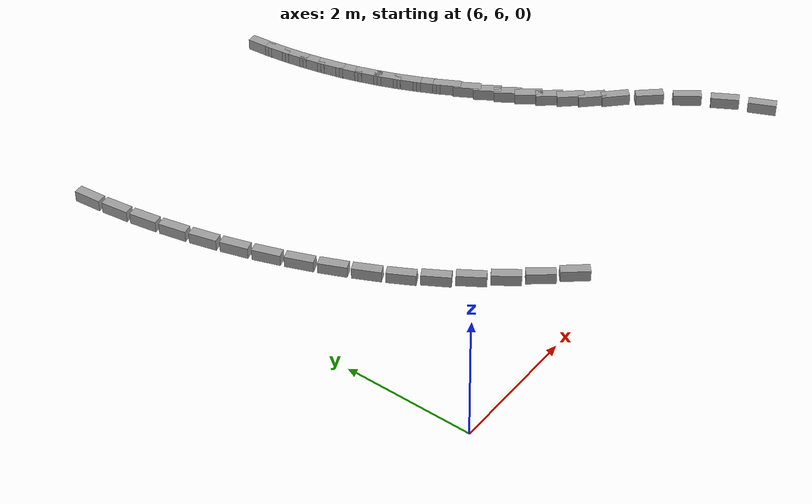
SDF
<sdf version="1.10">
 <world name="s_curve_avoidance">
  <model name="left_curb_seg_0041">
   <static>true</static>
   <pose>9.284961 6.545889 0.090000 0 0 2.253672</pose>
   <link name="curb">
    <collision name="collision">
     <geometry><box><size>0.432000 0.150000 0.180000</size></box></geometry>
    </collision>
    <visual name="visual">
     <geometry><box><size>0.432000 0.150000 0.180000</size></box></geometry>
     <material><ambient>0.58 0.58 0.58 1</ambient><diffuse>0.62 0.62 0.62 1</diffuse></material>
    </visual>
   </link>
  </model>
  <model name="left_curb_seg_0042">
   <static>true</static>
   <pose>8.957764 6.899996 0.090000 0 0 2.213672</pose>
   <link name="curb">
    <collision name="collision">
     <geometry><box><size>0.432000 0.150000 0.180000</size></box></geometry>
    </collision>
    <visual name="visual">
     <geometry><box><size>0.432000 0.150000 0.180000</size></box></geometry>
     <material><ambient>0.58 0.58 0.58 1</ambient><diffuse>0.62 0.62 0.62 1</diffuse></material>
    </visual>
   </link>
  </model>
  <model name="left_curb_seg_0043">
   <static>true</static>
   <pose>8.644057 7.268204 0.090000 0 0 2.173672</pose>
   <link name="curb">
    <collision name="collision">
     <geometry><box><size>0.432000 0.150000 0.180000</size></box></geometry>
    </collision>
    <visual name="visual">
     <geometry><box><size>0.432000 0.150000 0.180000</size></box></geometry>
     <material><ambient>0.58 0.58 0.58 1</ambient><diffuse>0.62 0.62 0.62 1</diffuse></material>
    </visual>
   </link>
  </model>
  <model name="left_curb_seg_0044">
   <static>true</static>
   <pose>8.344444 7.649998 0.090000 0 0 2.133672</pose>
   <link name="curb">
    <collision name="collision">
     <geometry><box><size>0.432000 0.150000 0.180000</size></box></geometry>
    </collision>
    <visual name="visual">
     <geometry><box><size>0.432000 0.150000 0.180000</size></box></geometry>
     <material><ambient>0.58 0.58 0.58 1</ambient><diffuse>0.62 0.62 0.62 1</diffuse></material>
    </visual>
   </link>
  </model>
  <model name="left_curb_seg_0045">
   <static>true</static>
   <pose>8.059511 8.044838 0.090000 0 0 2.093672</pose>
   <link name="curb">
    <collision name="collision">
     <geometry><box><size>0.432000 0.150000 0.180000</size></box></geometry>
    </collision>
    <visual name="visual">
     <geometry><box><size>0.432000 0.150000 0.180000</size></box></geometry>
     <material><ambient>0.58 0.58 0.58 1</ambient><diffuse>0.62 0.62 0.62 1</diffuse></material>
    </visual>
   </link>
  </model>
  <model name="left_curb_seg_0046">
   <static>true</static>
   <pose>7.805344 8.460294 0.090000 0 0 2.053672</pose>
   <link name="curb">
    <collision name="collision">
     <geometry><box><size>0.432000 0.150000 0.180000</size></box></geometry>
    </collision>
    <visual name="visual">
     <geometry><box><size>0.432000 0.150000 0.180000</size></box></geometry>
     <material><ambient>0.58 0.58 0.58 1</ambient><diffuse>0.62 0.62 0.62 1</diffuse></material>
    </visual>
   </link>
  </model>
  <model name="left_curb_seg_0047">
   <static>true</static>
   <pose>7.587902 8.896019 0.090000 0 0 2.013672</pose>
   <link name="curb">
    <collision name="collision">
     <geometry><box><size>0.432000 0.150000 0.180000</size></box></geometry>
    </collision>
    <visual name="visual">
     <geometry><box><size>0.432000 0.150000 0.180000</size></box></geometry>
     <material><ambient>0.58 0.58 0.58 1</ambient><diffuse>0.62 0.62 0.62 1</diffuse></material>
    </visual>
   </link>
  </model>
  <model name="left_curb_seg_0048">
   <static>true</static>
   <pose>7.388058 9.340091 0.090000 0 0 1.973672</pose>
   <link name="curb">
    <collision name="collision">
     <geometry><box><size>0.432000 0.150000 0.180000</size></box></geometry>
    </collision>
    <visual name="visual">
     <geometry><box><size>0.432000 0.150000 0.180000</size></box></geometry>
     <material><ambient>0.58 0.58 0.58 1</ambient><diffuse>0.62 0.62 0.62 1</diffuse></material>
    </visual>
   </link>
  </model>
  <model name="left_curb_seg_0049">
   <static>true</static>
   <pose>7.206132 9.791799 0.090000 0 0 1.933672</pose>
   <link name="curb">
    <collision name="collision">
     <geometry><box><size>0.432000 0.150000 0.180000</size></box></geometry>
    </collision>
    <visual name="visual">
     <geometry><box><size>0.432000 0.150000 0.180000</size></box></geometry>
     <material><ambient>0.58 0.58 0.58 1</ambient><diffuse>0.62 0.62 0.62 1</diffuse></material>
    </visual>
   </link>
  </model>
  <model name="left_curb_seg_0050">
   <static>true</static>
   <pose>7.042415 10.250421 0.090000 0 0 1.893672</pose>
   <link name="curb">
    <collision name="collision">
     <geometry><box><size>0.432000 0.150000 0.180000</size></box></geometry>
    </collision>
    <visual name="visual">
     <geometry><box><size>0.432000 0.150000 0.180000</size></box></geometry>
     <material><ambient>0.58 0.58 0.58 1</ambient><diffuse>0.62 0.62 0.62 1</diffuse></material>
    </visual>
   </link>
  </model>
  <model name="left_curb_seg_0051">
   <static>true</static>
   <pose>6.897169 10.715223 0.090000 0 0 1.853672</pose>
   <link name="curb">
    <collision name="collision">
     <geometry><box><size>0.432000 0.150000 0.180000</size></box></geometry>
    </collision>
    <visual name="visual">
     <geometry><box><size>0.432000 0.150000 0.180000</size></box></geometry>
     <material><ambient>0.58 0.58 0.58 1</ambient><diffuse>0.62 0.62 0.62 1</diffuse></material>
    </visual>
   </link>
  </model>
  <model name="left_curb_seg_0052">
   <static>true</static>
   <pose>6.770626 11.185461 0.090000 0 0 1.813672</pose>
   <link name="curb">
    <collision name="collision">
     <geometry><box><size>0.432000 0.150000 0.180000</size></box></geometry>
    </collision>
    <visual name="visual">
     <geometry><box><size>0.432000 0.150000 0.180000</size></box></geometry>
     <material><ambient>0.58 0.58 0.58 1</ambient><diffuse>0.62 0.62 0.62 1</diffuse></material>
    </visual>
   </link>
  </model>
  <model name="left_curb_seg_0053">
   <static>true</static>
   <pose>6.662989 11.660384 0.090000 0 0 1.773672</pose>
   <link name="curb">
    <collision name="collision">
     <geometry><box><size>0.432000 0.150000 0.180000</size></box></geometry>
    </collision>
    <visual name="visual">
     <geometry><box><size>0.432000 0.150000 0.180000</size></box></geometry>
     <material><ambient>0.58 0.58 0.58 1</ambient><diffuse>0.62 0.62 0.62 1</diffuse></material>
    </visual>
   </link>
  </model>
  <model name="left_curb_seg_0054">
   <static>true</static>
   <pose>6.574430 12.139231 0.090000 0 0 1.733672</pose>
   <link name="curb">
    <collision name="collision">
     <geometry><box><size>0.432000 0.150000 0.180000</size></box></geometry>
    </collision>
    <visual name="visual">
     <geometry><box><size>0.432000 0.150000 0.180000</size></box></geometry>
     <material><ambient>0.58 0.58 0.58 1</ambient><diffuse>0.62 0.62 0.62 1</diffuse></material>
    </visual>
   </link>
  </model>
  <model name="left_curb_seg_0055">
   <static>true</static>
   <pose>6.505090 12.621237 0.090000 0 0 1.693672</pose>
   <link name="curb">
    <collision name="collision">
     <geometry><box><size>0.432000 0.150000 0.180000</size></box></geometry>
    </collision>
    <visual name="visual">
     <geometry><box><size>0.432000 0.150000 0.180000</size></box></geometry>
     <material><ambient>0.58 0.58 0.58 1</ambient><diffuse>0.62 0.62 0.62 1</diffuse></material>
    </visual>
   </link>
  </model>
  <model name="left_curb_seg_0056">
   <static>true</static>
   <pose>6.455081 13.105630 0.090000 0 0 1.653672</pose>
   <link name="curb">
    <collision name="collision">
     <geometry><box><size>0.432000 0.150000 0.180000</size></box></geometry>
    </collision>
    <visual name="visual">
     <geometry><box><size>0.432000 0.150000 0.180000</size></box></geometry>
     <material><ambient>0.58 0.58 0.58 1</ambient><diffuse>0.62 0.62 0.62 1</diffuse></material>
    </visual>
   </link>
  </model>
  <model name="right_curb_seg_0034">
   <static>true</static>
   <pose>14.123682 6.313071 0.090000 0 0 1.987500</pose>
   <link name="curb">
    <collision name="collision">
     <geometry><box><size>0.432000 0.150000 0.180000</size></box></geometry>
    </collision>
    <visual name="visual">
     <geometry><box><size>0.432000 0.150000 0.180000</size></box></geometry>
     <material><ambient>0.58 0.58 0.58 1</ambient><diffuse>0.62 0.62 0.62 1</diffuse></material>
    </visual>
   </link>
  </model>
  <model name="right_curb_seg_0035">
   <static>true</static>
   <pose>13.901535 6.842779 0.090000 0 0 2.087500</pose>
   <link name="curb">
    <collision name="collision">
     <geometry><box><size>0.432000 0.150000 0.180000</size></box></geometry>
    </collision>
    <visual name="visual">
     <geometry><box><size>0.432000 0.150000 0.180000</size></box></geometry>
     <material><ambient>0.58 0.58 0.58 1</ambient><diffuse>0.62 0.62 0.62 1</diffuse></material>
    </visual>
   </link>
  </model>
  <model name="right_curb_seg_0036">
   <static>true</static>
   <pose>13.625469 7.351037 0.090000 0 0 2.187500</pose>
   <link name="curb">
    <collision name="collision">
     <geometry><box><size>0.432000 0.150000 0.180000</size></box></geometry>
    </collision>
    <visual name="visual">
     <geometry><box><size>0.432000 0.150000 0.180000</size></box></geometry>
     <material><ambient>0.58 0.58 0.58 1</ambient><diffuse>0.62 0.62 0.62 1</diffuse></material>
    </visual>
   </link>
  </model>
  <model name="right_curb_seg_0037">
   <static>true</static>
   <pose>13.297568 7.832337 0.090000 0 0 2.287500</pose>
   <link name="curb">
    <collision name="collision">
     <geometry><box><size>0.432000 0.150000 0.180000</size></box></geometry>
    </collision>
    <visual name="visual">
     <geometry><box><size>0.432000 0.150000 0.180000</size></box></geometry>
     <material><ambient>0.58 0.58 0.58 1</ambient><diffuse>0.62 0.62 0.62 1</diffuse></material>
    </visual>
   </link>
  </model>
  <model name="right_curb_seg_0038">
   <static>true</static>
   <pose>12.964969 8.242289 0.090000 0 0 2.355928</pose>
   <link name="curb">
    <collision name="collision">
     <geometry><box><size>0.432000 0.150000 0.180000</size></box></geometry>
    </collision>
    <visual name="visual">
     <geometry><box><size>0.432000 0.150000 0.180000</size></box></geometry>
     <material><ambient>0.58 0.58 0.58 1</ambient><diffuse>0.62 0.62 0.62 1</diffuse></material>
    </visual>
   </link>
  </model>
  <model name="right_curb_seg_0039">
   <static>true</static>
   <pose>12.742246 8.525017 0.090000 0 0 2.333672</pose>
   <link name="curb">
    <collision name="collision">
     <geometry><box><size>0.432000 0.150000 0.180000</size></box></geometry>
    </collision>
    <visual name="visual">
     <geometry><box><size>0.432000 0.150000 0.180000</size></box></geometry>
     <material><ambient>0.58 0.58 0.58 1</ambient><diffuse>0.62 0.62 0.62 1</diffuse></material>
    </visual>
   </link>
  </model>
  <model name="right_curb_seg_0040">
   <static>true</static>
   <pose>12.553439 8.789729 0.090000 0 0 2.293672</pose>
   <link name="curb">
    <collision name="collision">
     <geometry><box><size>0.432000 0.150000 0.180000</size></box></geometry>
    </collision>
    <visual name="visual">
     <geometry><box><size>0.432000 0.150000 0.180000</size></box></geometry>
     <material><ambient>0.58 0.58 0.58 1</ambient><diffuse>0.62 0.62 0.62 1</diffuse></material>
    </visual>
   </link>
  </model>
  <model name="right_curb_seg_0041">
   <static>true</static>
   <pose>12.376403 9.060558 0.090000 0 0 2.253672</pose>
   <link name="curb">
    <collision name="collision">
     <geometry><box><size>0.432000 0.150000 0.180000</size></box></geometry>
    </collision>
    <visual name="visual">
     <geometry><box><size>0.432000 0.150000 0.180000</size></box></geometry>
     <material><ambient>0.58 0.58 0.58 1</ambient><diffuse>0.62 0.62 0.62 1</diffuse></material>
    </visual>
   </link>
  </model>
  <model name="right_curb_seg_0042">
   <static>true</static>
   <pose>12.211324 9.336989 0.090000 0 0 2.213672</pose>
   <link name="curb">
    <collision name="collision">
     <geometry><box><size>0.432000 0.150000 0.180000</size></box></geometry>
    </collision>
    <visual name="visual">
     <geometry><box><size>0.432000 0.150000 0.180000</size></box></geometry>
     <material><ambient>0.58 0.58 0.58 1</ambient><diffuse>0.62 0.62 0.62 1</diffuse></material>
    </visual>
   </link>
  </model>
  <model name="right_curb_seg_0043">
   <static>true</static>
   <pose>12.058364 9.618501 0.090000 0 0 2.173672</pose>
   <link name="curb">
    <collision name="collision">
     <geometry><box><size>0.432000 0.150000 0.180000</size></box></geometry>
    </collision>
    <visual name="visual">
     <geometry><box><size>0.432000 0.150000 0.180000</size></box></geometry>
     <material><ambient>0.58 0.58 0.58 1</ambient><diffuse>0.62 0.62 0.62 1</diffuse></material>
    </visual>
   </link>
  </model>
  <model name="right_curb_seg_0044">
   <static>true</static>
   <pose>11.917665 9.904569 0.090000 0 0 2.133672</pose>
   <link name="curb">
    <collision name="collision">
     <geometry><box><size>0.432000 0.150000 0.180000</size></box></geometry>
    </collision>
    <visual name="visual">
     <geometry><box><size>0.432000 0.150000 0.180000</size></box></geometry>
     <material><ambient>0.58 0.58 0.58 1</ambient><diffuse>0.62 0.62 0.62 1</diffuse></material>
    </visual>
   </link>
  </model>
  <model name="right_curb_seg_0045">
   <static>true</static>
   <pose>11.789344 10.194665 0.090000 0 0 2.093672</pose>
   <link name="curb">
    <collision name="collision">
     <geometry><box><size>0.432000 0.150000 0.180000</size></box></geometry>
    </collision>
    <visual name="visual">
     <geometry><box><size>0.432000 0.150000 0.180000</size></box></geometry>
     <material><ambient>0.58 0.58 0.58 1</ambient><diffuse>0.62 0.62 0.62 1</diffuse></material>
    </visual>
   </link>
  </model>
  <model name="right_curb_seg_0046">
   <static>true</static>
   <pose>11.657979 10.480122 0.090000 0 0 2.053672</pose>
   <link name="curb">
    <collision name="collision">
     <geometry><box><size>0.432000 0.150000 0.180000</size></box></geometry>
    </collision>
    <visual name="visual">
     <geometry><box><size>0.432000 0.150000 0.180000</size></box></geometry>
     <material><ambient>0.58 0.58 0.58 1</ambient><diffuse>0.62 0.62 0.62 1</diffuse></material>
    </visual>
   </link>
  </model>
  <model name="right_curb_seg_0047">
   <static>true</static>
   <pose>11.518227 10.760167 0.090000 0 0 2.013672</pose>
   <link name="curb">
    <collision name="collision">
     <geometry><box><size>0.432000 0.150000 0.180000</size></box></geometry>
    </collision>
    <visual name="visual">
     <geometry><box><size>0.432000 0.150000 0.180000</size></box></geometry>
     <material><ambient>0.58 0.58 0.58 1</ambient><diffuse>0.62 0.62 0.62 1</diffuse></material>
    </visual>
   </link>
  </model>
  <model name="right_curb_seg_0048">
   <static>true</static>
   <pose>11.389785 11.045576 0.090000 0 0 1.973672</pose>
   <link name="curb">
    <collision name="collision">
     <geometry><box><size>0.432000 0.150000 0.180000</size></box></geometry>
    </collision>
    <visual name="visual">
     <geometry><box><size>0.432000 0.150000 0.180000</size></box></geometry>
     <material><ambient>0.58 0.58 0.58 1</ambient><diffuse>0.62 0.62 0.62 1</diffuse></material>
    </visual>
   </link>
  </model>
  <model name="right_curb_seg_0049">
   <static>true</static>
   <pose>11.272859 11.335894 0.090000 0 0 1.933672</pose>
   <link name="curb">
    <collision name="collision">
     <geometry><box><size>0.432000 0.150000 0.180000</size></box></geometry>
    </collision>
    <visual name="visual">
     <geometry><box><size>0.432000 0.150000 0.180000</size></box></geometry>
     <material><ambient>0.58 0.58 0.58 1</ambient><diffuse>0.62 0.62 0.62 1</diffuse></material>
    </visual>
   </link>
  </model>
  <model name="right_curb_seg_0050">
   <static>true</static>
   <pose>11.167636 11.630655 0.090000 0 0 1.893672</pose>
   <link name="curb">
    <collision name="collision">
     <geometry><box><size>0.432000 0.150000 0.180000</size></box></geometry>
    </collision>
    <visual name="visual">
     <geometry><box><size>0.432000 0.150000 0.180000</size></box></geometry>
     <material><ambient>0.58 0.58 0.58 1</ambient><diffuse>0.62 0.62 0.62 1</diffuse></material>
    </visual>
   </link>
  </model>
  <model name="right_curb_seg_0051">
   <static>true</static>
   <pose>11.074285 11.929388 0.090000 0 0 1.853672</pose>
   <link name="curb">
    <collision name="collision">
     <geometry><box><size>0.432000 0.150000 0.180000</size></box></geometry>
    </collision>
    <visual name="visual">
     <geometry><box><size>0.432000 0.150000 0.180000</size></box></geometry>
     <material><ambient>0.58 0.58 0.58 1</ambient><diffuse>0.62 0.62 0.62 1</diffuse></material>
    </visual>
   </link>
  </model>
  <model name="right_curb_seg_0052">
   <static>true</static>
   <pose>10.992955 12.231615 0.090000 0 0 1.813672</pose>
   <link name="curb">
    <collision name="collision">
     <geometry><box><size>0.432000 0.150000 0.180000</size></box></geometry>
    </collision>
    <visual name="visual">
     <geometry><box><size>0.432000 0.150000 0.180000</size></box></geometry>
     <material><ambient>0.58 0.58 0.58 1</ambient><diffuse>0.62 0.62 0.62 1</diffuse></material>
    </visual>
   </link>
  </model>
  <model name="right_curb_seg_0053">
   <static>true</static>
   <pose>10.923775 12.536853 0.090000 0 0 1.773672</pose>
   <link name="curb">
    <collision name="collision">
     <geometry><box><size>0.432000 0.150000 0.180000</size></box></geometry>
    </collision>
    <visual name="visual">
     <geometry><box><size>0.432000 0.150000 0.180000</size></box></geometry>
     <material><ambient>0.58 0.58 0.58 1</ambient><diffuse>0.62 0.62 0.62 1</diffuse></material>
    </visual>
   </link>
  </model>
  <model name="right_curb_seg_0054">
   <static>true</static>
   <pose>10.866857 12.844613 0.090000 0 0 1.733672</pose>
   <link name="curb">
    <collision name="collision">
     <geometry><box><size>0.432000 0.150000 0.180000</size></box></geometry>
    </collision>
    <visual name="visual">
     <geometry><box><size>0.432000 0.150000 0.180000</size></box></geometry>
     <material><ambient>0.58 0.58 0.58 1</ambient><diffuse>0.62 0.62 0.62 1</diffuse></material>
    </visual>
   </link>
  </model>
  <model name="right_curb_seg_0055">
   <static>true</static>
   <pose>10.822292 13.154403 0.090000 0 0 1.693672</pose>
   <link name="curb">
    <collision name="collision">
     <geometry><box><size>0.432000 0.150000 0.180000</size></box></geometry>
    </collision>
    <visual name="visual">
     <geometry><box><size>0.432000 0.150000 0.180000</size></box></geometry>
     <material><ambient>0.58 0.58 0.58 1</ambient><diffuse>0.62 0.62 0.62 1</diffuse></material>
    </visual>
   </link>
  </model>
  <model name="right_curb_seg_0056">
   <static>true</static>
   <pose>10.790151 13.465728 0.090000 0 0 1.653672</pose>
   <link name="curb">
    <collision name="collision">
     <geometry><box><size>0.432000 0.150000 0.180000</size></box></geometry>
    </collision>
    <visual name="visual">
     <geometry><box><size>0.432000 0.150000 0.180000</size></box></geometry>
     <material><ambient>0.58 0.58 0.58 1</ambient><diffuse>0.62 0.62 0.62 1</diffuse></material>
    </visual>
   </link>
  </model>
 </world>
</sdf>
